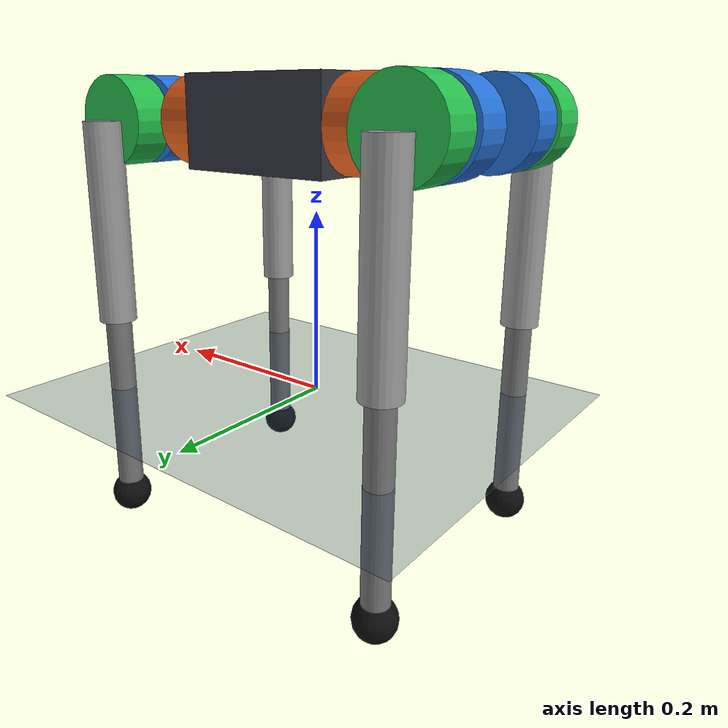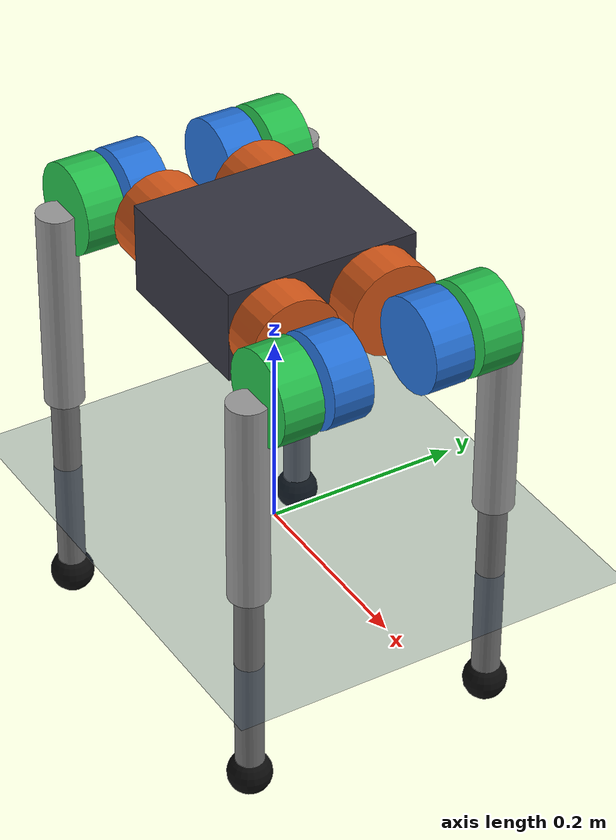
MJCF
<mujoco model="design_quad">
  <compiler angle="radian" autolimits="true"/>
  <option timestep="0.001" cone="elliptic" impratio="100"/>
  <visual>
    <headlight diffuse="0.6 0.6 0.6" ambient="0.3 0.3 0.3" specular="0 0 0"/>
    <rgba haze="0.15 0.25 0.35 1"/>
  </visual>
  <asset>
    <texture type="skybox" builtin="gradient" rgb1="0.3 0.5 0.7" rgb2="0 0 0"
             width="256" height="1536"/>
    <texture type="2d" name="groundplane" builtin="checker"
             rgb1="0.2 0.3 0.4" rgb2="0.1 0.2 0.3"
             width="300" height="300"/>
    <material name="groundplane" texture="groundplane" texuniform="true"
              texrepeat="5 5" reflectance="0.2"/>
  </asset>
  <worldbody>
    <light pos="0 0 2" dir="0 0 -1" directional="true"/>
    <geom name="floor" type="plane" size="0 0 0.05" material="groundplane"/>
    <body name="trunk" pos="0 0 0.292000">
      <freejoint/>
      <camera name="tracking" mode="trackcom" pos="0 -1.2 0.6"
              xyaxes="1 0 0 0 1 1"/>
      <inertial pos="0 0 0" mass="0.674397"
                diaginertia="0.002635 0.002100 0.003783"/>
      <geom type="box"
            size="0.085000 0.098000 0.046000"
            rgba="0.20 0.20 0.25 1"/>
      <site name="imu" pos="0 0 0"/>

    <body name="FR_abd_act" pos="0.105000 -0.052000 0.000000">
      <inertial pos="0 0 0" mass="1.028375"
                diaginertia="0.001088 0.000681 0.000681"/>
      <geom type="cylinder" size="0.046000 0.020000"
            quat="1 0 1 0" rgba="0.85 0.35 0.10 1"/>
      <body name="FR_hip_act" pos="0.071000 0 0">
        <inertial pos="0 0 0" mass="1.028375"
                  diaginertia="0.000681 0.001088 0.000681"/>
        <joint name="FR_hip_joint" axis="-1 0 0" range="-1.0 1.0"
               damping="1.0" armature="0.01" frictionloss="0.2"/>
        <geom type="cylinder" size="0.046000 0.020000"
              quat="1 1 0 0" rgba="0.15 0.45 0.85 1"/>
        <body name="FR_knee_act" pos="0 -0.050000 0">
          <inertial pos="0 0 0" mass="1.434746"
                    diaginertia="0.000950 0.001518 0.000950"/>
          <joint name="FR_thigh_joint" axis="0 1 0" range="-1.2 3.5"
                 damping="2.0" armature="0.01" frictionloss="0.2"/>
          <geom type="cylinder" size="0.046000 0.020000"
                quat="1 1 0 0" rgba="0.15 0.75 0.30 1"/>
          <body name="FR_thigh" pos="0 -0.030000 0">
            <inertial pos="0 0 -0.106500" mass="0.187365"
                      diaginertia="0.000727 0.000727 0.000037"/>
            <geom type="cylinder" fromto="0 0 0 0 0 -0.213000"
                  size="0.020000" rgba="0.6 0.6 0.6 1"/>
            <body name="FR_calf" pos="0 0 -0.213000">
              <inertial pos="0 0 -0.106500" mass="0.091809"
                        diaginertia="0.000352 0.000352 0.000009"/>
              <joint name="FR_calf_joint" axis="0 1 0" range="-2.9 -0.5"
                     damping="2.0" armature="0.01" frictionloss="0.2"/>
              <geom type="cylinder" fromto="0 0 0 0 0 -0.213000"
                    size="0.014000" rgba="0.45 0.45 0.45 1"/>
              <body name="FR_foot" pos="0 0 -0.213000">
                <inertial pos="0 0 0" mass="0.020000"
                          diaginertia="0.000004 0.000004 0.000004"/>
                <geom name="FR" type="sphere" size="0.022000"
                      friction="0.8 0.02 0.01" priority="1"
                      solimp="0.015 1 0.023" condim="6" rgba="0.05 0.05 0.05 1"/>
                <site name="FR" type="sphere" size="0.022000"
                      pos="0 0 0" group="5"/>
              </body>
            </body>
          </body>
        </body>
      </body>
    </body>

    <body name="FL_abd_act" pos="0.105000 0.052000 0.000000">
      <inertial pos="0 0 0" mass="1.028375"
                diaginertia="0.001088 0.000681 0.000681"/>
      <geom type="cylinder" size="0.046000 0.020000"
            quat="1 0 1 0" rgba="0.85 0.35 0.10 1"/>
      <body name="FL_hip_act" pos="0.071000 0 0">
        <inertial pos="0 0 0" mass="1.028375"
                  diaginertia="0.000681 0.001088 0.000681"/>
        <joint name="FL_hip_joint" axis="1 0 0" range="-1.0 1.0"
               damping="1.0" armature="0.01" frictionloss="0.2"/>
        <geom type="cylinder" size="0.046000 0.020000"
              quat="1 1 0 0" rgba="0.15 0.45 0.85 1"/>
        <body name="FL_knee_act" pos="0 0.050000 0">
          <inertial pos="0 0 0" mass="1.434746"
                    diaginertia="0.000950 0.001518 0.000950"/>
          <joint name="FL_thigh_joint" axis="0 1 0" range="-1.2 3.5"
                 damping="2.0" armature="0.01" frictionloss="0.2"/>
          <geom type="cylinder" size="0.046000 0.020000"
                quat="1 1 0 0" rgba="0.15 0.75 0.30 1"/>
          <body name="FL_thigh" pos="0 0.030000 0">
            <inertial pos="0 0 -0.106500" mass="0.187365"
                      diaginertia="0.000727 0.000727 0.000037"/>
            <geom type="cylinder" fromto="0 0 0 0 0 -0.213000"
                  size="0.020000" rgba="0.6 0.6 0.6 1"/>
            <body name="FL_calf" pos="0 0 -0.213000">
              <inertial pos="0 0 -0.106500" mass="0.091809"
                        diaginertia="0.000352 0.000352 0.000009"/>
              <joint name="FL_calf_joint" axis="0 1 0" range="-2.9 -0.5"
                     damping="2.0" armature="0.01" frictionloss="0.2"/>
              <geom type="cylinder" fromto="0 0 0 0 0 -0.213000"
                    size="0.014000" rgba="0.45 0.45 0.45 1"/>
              <body name="FL_foot" pos="0 0 -0.213000">
                <inertial pos="0 0 0" mass="0.020000"
                          diaginertia="0.000004 0.000004 0.000004"/>
                <geom name="FL" type="sphere" size="0.022000"
                      friction="0.8 0.02 0.01" priority="1"
                      solimp="0.015 1 0.023" condim="6" rgba="0.05 0.05 0.05 1"/>
                <site name="FL" type="sphere" size="0.022000"
                      pos="0 0 0" group="5"/>
              </body>
            </body>
          </body>
        </body>
      </body>
    </body>

    <body name="RR_abd_act" pos="-0.105000 -0.052000 0.000000">
      <inertial pos="0 0 0" mass="1.028375"
                diaginertia="0.001088 0.000681 0.000681"/>
      <geom type="cylinder" size="0.046000 0.020000"
            quat="1 0 1 0" rgba="0.85 0.35 0.10 1"/>
      <body name="RR_hip_act" pos="-0.071000 0 0">
        <inertial pos="0 0 0" mass="1.028375"
                  diaginertia="0.000681 0.001088 0.000681"/>
        <joint name="RR_hip_joint" axis="-1 0 0" range="-1.0 1.0"
               damping="1.0" armature="0.01" frictionloss="0.2"/>
        <geom type="cylinder" size="0.046000 0.020000"
              quat="1 1 0 0" rgba="0.15 0.45 0.85 1"/>
        <body name="RR_knee_act" pos="0 -0.050000 0">
          <inertial pos="0 0 0" mass="1.434746"
                    diaginertia="0.000950 0.001518 0.000950"/>
          <joint name="RR_thigh_joint" axis="0 1 0" range="-1.2 3.5"
                 damping="2.0" armature="0.01" frictionloss="0.2"/>
          <geom type="cylinder" size="0.046000 0.020000"
                quat="1 1 0 0" rgba="0.15 0.75 0.30 1"/>
          <body name="RR_thigh" pos="0 -0.030000 0">
            <inertial pos="0 0 -0.106500" mass="0.187365"
                      diaginertia="0.000727 0.000727 0.000037"/>
            <geom type="cylinder" fromto="0 0 0 0 0 -0.213000"
                  size="0.020000" rgba="0.6 0.6 0.6 1"/>
            <body name="RR_calf" pos="0 0 -0.213000">
              <inertial pos="0 0 -0.106500" mass="0.091809"
                        diaginertia="0.000352 0.000352 0.000009"/>
              <joint name="RR_calf_joint" axis="0 1 0" range="-2.9 -0.5"
                     damping="2.0" armature="0.01" frictionloss="0.2"/>
              <geom type="cylinder" fromto="0 0 0 0 0 -0.213000"
                    size="0.014000" rgba="0.45 0.45 0.45 1"/>
              <body name="RR_foot" pos="0 0 -0.213000">
                <inertial pos="0 0 0" mass="0.020000"
                          diaginertia="0.000004 0.000004 0.000004"/>
                <geom name="RR" type="sphere" size="0.022000"
                      friction="0.8 0.02 0.01" priority="1"
                      solimp="0.015 1 0.023" condim="6" rgba="0.05 0.05 0.05 1"/>
                <site name="RR" type="sphere" size="0.022000"
                      pos="0 0 0" group="5"/>
              </body>
            </body>
          </body>
        </body>
      </body>
    </body>

    <body name="RL_abd_act" pos="-0.105000 0.052000 0.000000">
      <inertial pos="0 0 0" mass="1.028375"
                diaginertia="0.001088 0.000681 0.000681"/>
      <geom type="cylinder" size="0.046000 0.020000"
            quat="1 0 1 0" rgba="0.85 0.35 0.10 1"/>
      <body name="RL_hip_act" pos="-0.071000 0 0">
        <inertial pos="0 0 0" mass="1.028375"
                  diaginertia="0.000681 0.001088 0.000681"/>
        <joint name="RL_hip_joint" axis="1 0 0" range="-1.0 1.0"
               damping="1.0" armature="0.01" frictionloss="0.2"/>
        <geom type="cylinder" size="0.046000 0.020000"
              quat="1 1 0 0" rgba="0.15 0.45 0.85 1"/>
        <body name="RL_knee_act" pos="0 0.050000 0">
          <inertial pos="0 0 0" mass="1.434746"
                    diaginertia="0.000950 0.001518 0.000950"/>
          <joint name="RL_thigh_joint" axis="0 1 0" range="-1.2 3.5"
                 damping="2.0" armature="0.01" frictionloss="0.2"/>
          <geom type="cylinder" size="0.046000 0.020000"
                quat="1 1 0 0" rgba="0.15 0.75 0.30 1"/>
          <body name="RL_thigh" pos="0 0.030000 0">
            <inertial pos="0 0 -0.106500" mass="0.187365"
                      diaginertia="0.000727 0.000727 0.000037"/>
            <geom type="cylinder" fromto="0 0 0 0 0 -0.213000"
                  size="0.020000" rgba="0.6 0.6 0.6 1"/>
            <body name="RL_calf" pos="0 0 -0.213000">
              <inertial pos="0 0 -0.106500" mass="0.091809"
                        diaginertia="0.000352 0.000352 0.000009"/>
              <joint name="RL_calf_joint" axis="0 1 0" range="-2.9 -0.5"
                     damping="2.0" armature="0.01" frictionloss="0.2"/>
              <geom type="cylinder" fromto="0 0 0 0 0 -0.213000"
                    size="0.014000" rgba="0.45 0.45 0.45 1"/>
              <body name="RL_foot" pos="0 0 -0.213000">
                <inertial pos="0 0 0" mass="0.020000"
                          diaginertia="0.000004 0.000004 0.000004"/>
                <geom name="RL" type="sphere" size="0.022000"
                      friction="0.8 0.02 0.01" priority="1"
                      solimp="0.015 1 0.023" condim="6" rgba="0.05 0.05 0.05 1"/>
                <site name="RL" type="sphere" size="0.022000"
                      pos="0 0 0" group="5"/>
              </body>
            </body>
          </body>
        </body>
      </body>
    </body>
    </body>
  </worldbody>
  <actuator>
    <position name="FR_hip" joint="FR_hip_joint" kp="100" forcerange="-23.622511 23.622511"/>
    <position name="FR_thigh" joint="FR_thigh_joint" kp="100" forcerange="-23.622511 23.622511"/>
    <position name="FR_calf" joint="FR_calf_joint" kp="100" forcerange="-35.238000 35.238000"/>
    <position name="FL_hip" joint="FL_hip_joint" kp="100" forcerange="-23.622511 23.622511"/>
    <position name="FL_thigh" joint="FL_thigh_joint" kp="100" forcerange="-23.622511 23.622511"/>
    <position name="FL_calf" joint="FL_calf_joint" kp="100" forcerange="-35.238000 35.238000"/>
    <position name="RR_hip" joint="RR_hip_joint" kp="100" forcerange="-23.622511 23.622511"/>
    <position name="RR_thigh" joint="RR_thigh_joint" kp="100" forcerange="-23.622511 23.622511"/>
    <position name="RR_calf" joint="RR_calf_joint" kp="100" forcerange="-35.238000 35.238000"/>
    <position name="RL_hip" joint="RL_hip_joint" kp="100" forcerange="-23.622511 23.622511"/>
    <position name="RL_thigh" joint="RL_thigh_joint" kp="100" forcerange="-23.622511 23.622511"/>
    <position name="RL_calf" joint="RL_calf_joint" kp="100" forcerange="-35.238000 35.238000"/>
  </actuator>
  <keyframe>
    <key name="home" qpos="0.000000 0.000000 0.292000 1.000000 0.000000 0.000000 0.000000 0.000000 0.884337 -1.768673 0.000000 0.884337 -1.768673 0.000000 0.884337 -1.768673 0.000000 0.884337 -1.768673" ctrl="0.000000 0.884337 -1.768673 0.000000 0.884337 -1.768673 0.000000 0.884337 -1.768673 0.000000 0.884337 -1.768673"/>
  </keyframe>
</mujoco>
